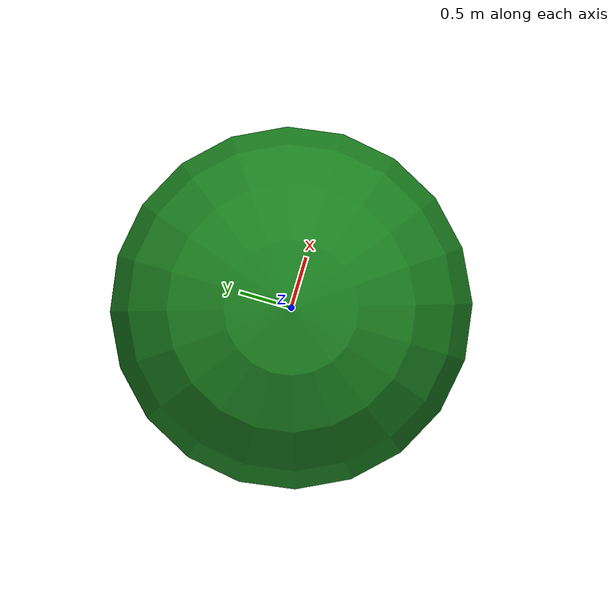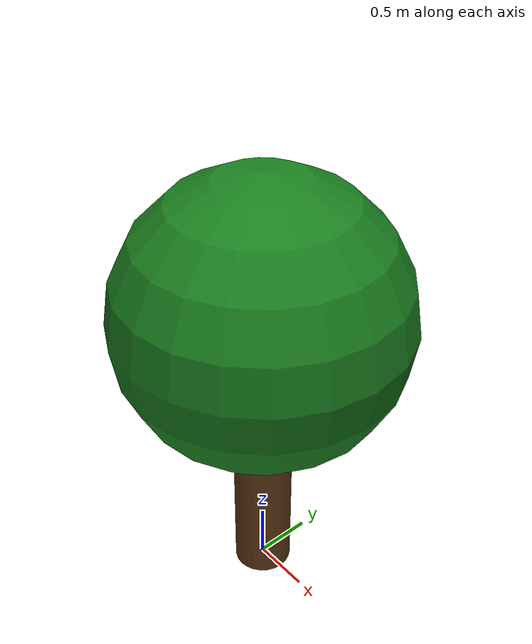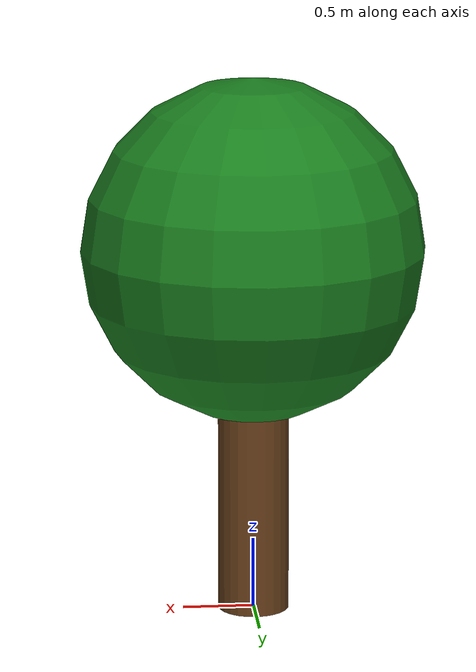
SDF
<?xml version="1.0"?>
<sdf version="1.7">
  <model name="simple_tree">
    <static>true</static>
    <link name="link">
      <collision name="trunk">
        <pose>0 0 1.0 0 0 0</pose>
        <geometry>
          <cylinder>
            <radius>0.25</radius>
            <length>2.0</length>
          </cylinder>
        </geometry>
      </collision>
      <collision name="canopy">
        <pose>0 0 2.6 0 0 0</pose>
        <geometry>
          <sphere>
            <radius>1.2</radius>
          </sphere>
        </geometry>
      </collision>
      <visual name="trunk">
        <pose>0 0 1.0 0 0 0</pose>
        <cast_shadows>false</cast_shadows>
        <geometry>
          <cylinder>
            <radius>0.25</radius>
            <length>2.0</length>
          </cylinder>
        </geometry>
        <material>
          <ambient>0.30 0.18 0.08 1</ambient>
          <diffuse>0.40 0.24 0.10 1</diffuse>
        </material>
      </visual>
      <visual name="canopy">
        <pose>0 0 2.6 0 0 0</pose>
        <cast_shadows>false</cast_shadows>
        <geometry>
          <sphere>
            <radius>1.2</radius>
          </sphere>
        </geometry>
        <material>
          <ambient>0.05 0.35 0.08 1</ambient>
          <diffuse>0.10 0.50 0.12 1</diffuse>
        </material>
      </visual>
    </link>
  </model>
</sdf>
